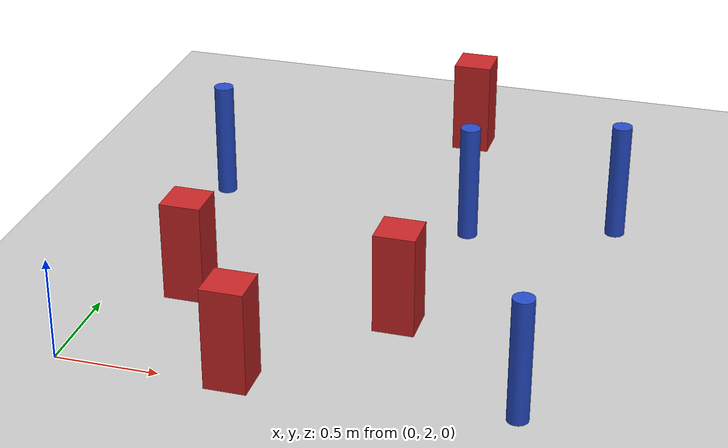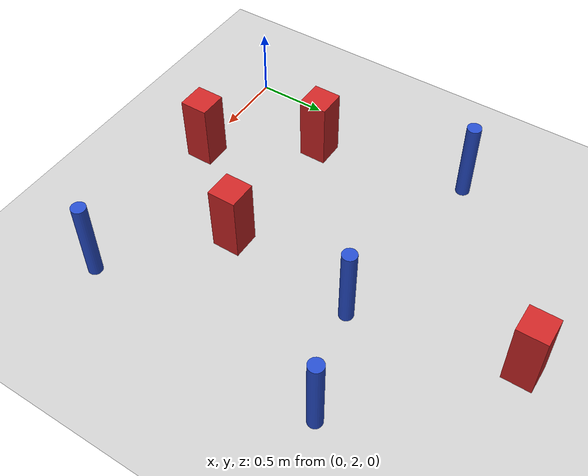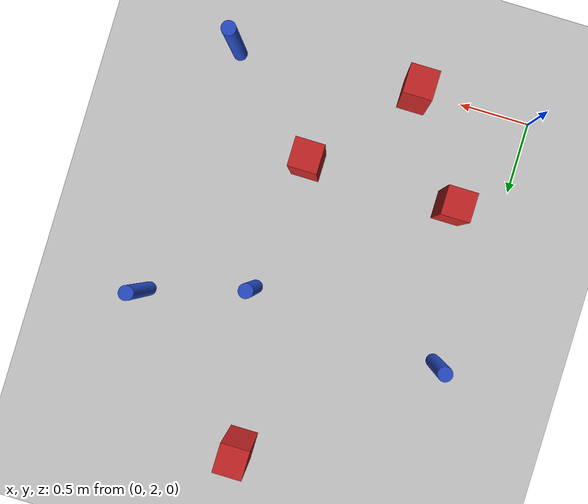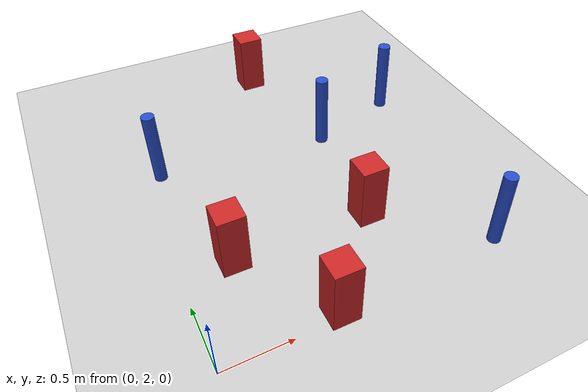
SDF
<sdf version="1.6">
 <world name="default">
  <model name="ground_plane">
   <static>1</static>
   <link name="link">
    <collision name="collision">
     <geometry><plane><normal>0 0 1</normal><size>100 100</size></plane></geometry>
     <surface><friction><ode><mu>100</mu><mu2>50</mu2></ode></friction></surface>
    </collision>
    <visual name="visual">
     <cast_shadows>0</cast_shadows>
     <geometry><plane><normal>0 0 1</normal><size>100 100</size></plane></geometry>
     <material>
      <script><uri>file://media/materials/scripts/gazebo.material</uri><name>Gazebo/Grey</name></script>
     </material>
    </visual>
   </link>
  </model>
  <model name="pole_obstacle8">
   <static>0</static>
   <link name="link">
    <pose>0 0 0.3 0 -0 0</pose>
    <inertial>
     <mass>1</mass>
     <inertia><ixx>0.145833</ixx><ixy>0</ixy><ixz>0</ixz><iyy>0.145833</iyy><iyz>0</iyz><izz>0.125</izz></inertia>
    </inertial>
    <collision name="collision">
     <geometry><cylinder><radius>0.05</radius><length>0.6</length></cylinder></geometry>
    </collision>
    <visual name="visual">
     <geometry><cylinder><radius>0.05</radius><length>0.6</length></cylinder></geometry>
     <material>
      <script><name>Gazebo/Blue</name><uri>file://media/materials/scripts/gazebo.material</uri></script>
     </material>
    </visual>
   </link>
   <pose>1.52208 3.65928 -5e-06 0 -0 8e-06</pose>
  </model>
  <model name="square_post_obstacle29">
   <static>0</static>
   <link name="link">
    <pose>0 0 0.25 0 -0 0</pose>
    <inertial>
     <mass>100</mass>
     <inertia>
      <ixx>0.166667</ixx>
      <ixy>0</ixy>
      <ixz>0</ixz>
      <iyy>0.166667</iyy>
      <iyz>0</iyz>
      <izz>0.166667</izz>
     </inertia>
    </inertial>
    <collision name="collision"><geometry><box><size>0.2 0.2 0.5</size></box></geometry></collision>
    <visual name="visual">
     <geometry><box><size>0.2 0.2 0.5</size></box></geometry>
     <material>
      <script><name>Gazebo/Red</name><uri>file://media/materials/scripts/gazebo.material</uri></script>
     </material>
    </visual>
   </link>
   <pose>0.372644 2.73219 0 -1e-06 7e-06 -0.000607</pose>
  </model>
  <model name="square_post_obstacle60">
   <static>0</static>
   <link name="link">
    <pose>0 0 0.25 0 -0 0</pose>
    <inertial>
     <mass>100</mass>
     <inertia>
      <ixx>0.166667</ixx>
      <ixy>0</ixy>
      <ixz>0</ixz>
      <iyy>0.166667</iyy>
      <iyz>0</iyz>
      <izz>0.166667</izz>
     </inertia>
    </inertial>
    <collision name="collision"><geometry><box><size>0.2 0.2 0.5</size></box></geometry></collision>
    <visual name="visual">
     <geometry><box><size>0.2 0.2 0.5</size></box></geometry>
     <material>
      <script><name>Gazebo/Red</name><uri>file://media/materials/scripts/gazebo.material</uri></script>
     </material>
    </visual>
   </link>
   <pose>1.30662 4.74991 0 -1e-06 7e-06 -0.000607</pose>
  </model>
  <model name="pole_obstacle97">
   <static>0</static>
   <link name="link">
    <pose>0 0 0.3 0 -0 0</pose>
    <inertial>
     <mass>1</mass>
     <inertia><ixx>0.145833</ixx><ixy>0</ixy><ixz>0</ixz><iyy>0.145833</iyy><iyz>0</iyz><izz>0.125</izz></inertia>
    </inertial>
    <collision name="collision">
     <geometry><cylinder><radius>0.05</radius><length>0.6</length></cylinder></geometry>
    </collision>
    <visual name="visual">
     <geometry><cylinder><radius>0.05</radius><length>0.6</length></cylinder></geometry>
     <material>
      <script><name>Gazebo/Blue</name><uri>file://media/materials/scripts/gazebo.material</uri></script>
     </material>
    </visual>
   </link>
   <pose>0.164551 3.80045 -5e-06 0 0 -6e-06</pose>
  </model>
  <model name="pole_obstacle99">
   <static>0</static>
   <link name="link">
    <pose>0 0 0.3 0 -0 0</pose>
    <inertial>
     <mass>1</mass>
     <inertia><ixx>0.145833</ixx><ixy>0</ixy><ixz>0</ixz><iyy>0.145833</iyy><iyz>0</iyz><izz>0.125</izz></inertia>
    </inertial>
    <collision name="collision">
     <geometry><cylinder><radius>0.05</radius><length>0.6</length></cylinder></geometry>
    </collision>
    <visual name="visual">
     <geometry><cylinder><radius>0.05</radius><length>0.6</length></cylinder></geometry>
     <material>
      <script><name>Gazebo/Blue</name><uri>file://media/materials/scripts/gazebo.material</uri></script>
     </material>
    </visual>
   </link>
   <pose>2.2427 3.88878 -5e-06 0 0 -4e-05</pose>
  </model>
  <model name="square_post_obstacle97">
   <static>0</static>
   <link name="link">
    <pose>0 0 0.25 0 -0 0</pose>
    <inertial>
     <mass>100</mass>
     <inertia>
      <ixx>0.166667</ixx>
      <ixy>0</ixy>
      <ixz>0</ixz>
      <iyy>0.166667</iyy>
      <iyz>0</iyz>
      <izz>0.166667</izz>
     </inertia>
    </inertial>
    <collision name="collision"><geometry><box><size>0.2 0.2 0.5</size></box></geometry></collision>
    <visual name="visual">
     <geometry><box><size>0.2 0.2 0.5</size></box></geometry>
     <material>
      <script><name>Gazebo/Red</name><uri>file://media/materials/scripts/gazebo.material</uri></script>
     </material>
    </visual>
   </link>
   <pose>1.41131 2.71705 0 -1e-06 7e-06 -0.000607</pose>
  </model>
  <model name="pole_obstacle103">
   <static>0</static>
   <link name="link">
    <pose>0 0 0.3 0 -0 0</pose>
    <inertial>
     <mass>1</mass>
     <inertia><ixx>0.145833</ixx><ixy>0</ixy><ixz>0</ixz><iyy>0.145833</iyy><iyz>0</iyz><izz>0.125</izz></inertia>
    </inertial>
    <collision name="collision">
     <geometry><cylinder><radius>0.05</radius><length>0.6</length></cylinder></geometry>
    </collision>
    <visual name="visual">
     <geometry><cylinder><radius>0.05</radius><length>0.6</length></cylinder></geometry>
     <material>
      <script><name>Gazebo/Blue</name><uri>file://media/materials/scripts/gazebo.material</uri></script>
     </material>
    </visual>
   </link>
   <pose>2.10342 2.10157 -5e-06 0 0 -4e-05</pose>
  </model>
  <model name="square_post_obstacle128">
   <static>0</static>
   <link name="link">
    <pose>0 0 0.25 0 -0 0</pose>
    <inertial>
     <mass>100</mass>
     <inertia>
      <ixx>0.166667</ixx>
      <ixy>0</ixy>
      <ixz>0</ixz>
      <iyy>0.166667</iyy>
      <iyz>0</iyz>
      <izz>0.166667</izz>
     </inertia>
    </inertial>
    <collision name="collision"><geometry><box><size>0.2 0.2 0.5</size></box></geometry></collision>
    <visual name="visual">
     <geometry><box><size>0.2 0.2 0.5</size></box></geometry>
     <material>
      <script><name>Gazebo/Red</name><uri>file://media/materials/scripts/gazebo.material</uri></script>
     </material>
    </visual>
   </link>
   <pose>0.833001 2.04802 0 -1e-06 7e-06 -0.000607</pose>
  </model>
 </world>
</sdf>
